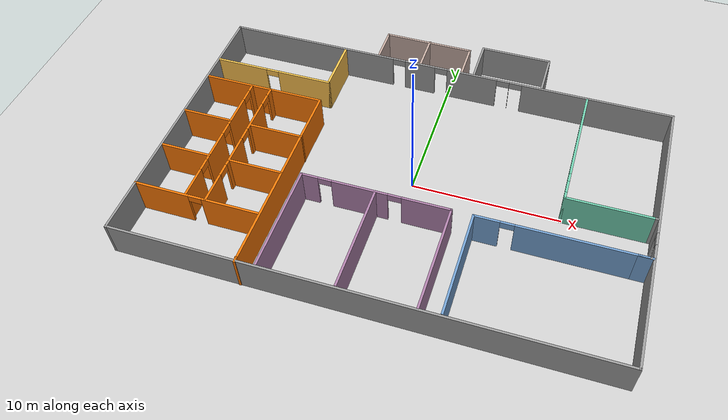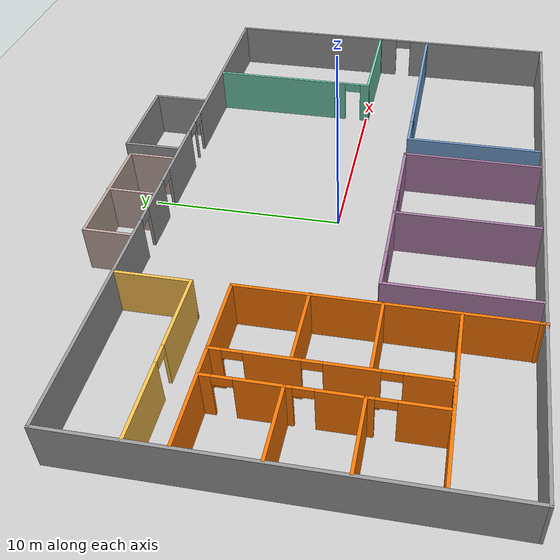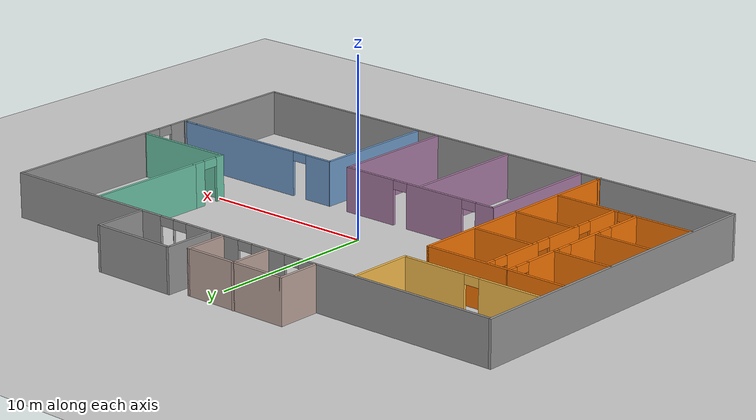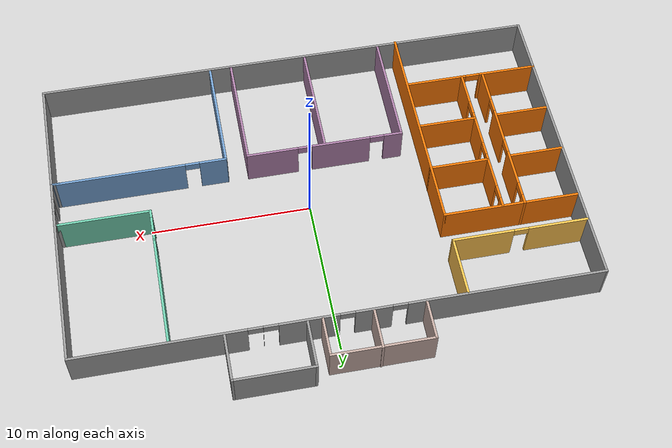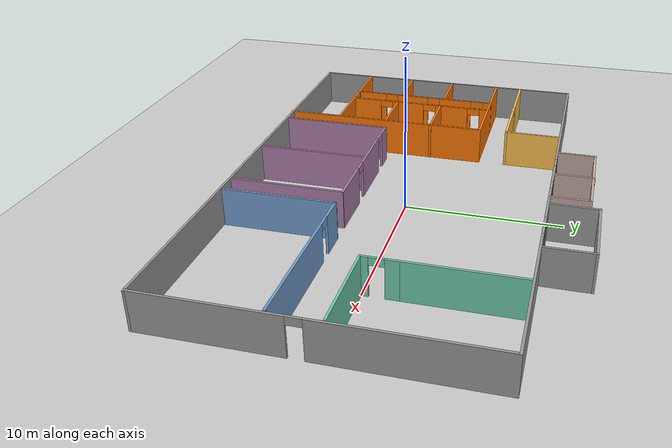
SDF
<sdf version="1.6">
 <world name="default">
  <model name="ground_plane">
   <static>1</static>
   <link name="link">
    <collision name="collision">
     <geometry><plane><normal>0 0 1</normal><size>100 100</size></plane></geometry>
     <surface>
      <contact><collide_bitmask>65535</collide_bitmask></contact>
      <friction><ode><mu>100</mu><mu2>50</mu2></ode></friction>
     </surface>
    </collision>
    <visual name="visual">
     <cast_shadows>0</cast_shadows>
     <geometry><plane><normal>0 0 1</normal><size>100 100</size></plane></geometry>
     <material>
      <script><uri>file://media/materials/scripts/gazebo.material</uri><name>Gazebo/Grey</name></script>
     </material>
    </visual>
   </link>
  </model>
  <model name="myBuilding">
   <pose>-0.25188 0.80761 0 0 -0 0</pose>
   <link name="Wall_105">
    <collision name="Wall_105_Collision">
     <geometry><box><size>2.5 0.15 2.5</size></box></geometry>
     <pose>0 0 1.25 0 -0 0</pose>
    </collision>
    <visual name="Wall_105_Visual">
     <pose>0 0 1.25 0 -0 0</pose>
     <geometry><box><size>2.5 0.15 2.5</size></box></geometry>
     <material>
      <script><uri>file://media/materials/scripts/gazebo.material</uri><name>Gazebo/Grey</name></script>
      <ambient>0.760784 0.662745 0.627451 1</ambient>
     </material>
     <meta><layer>0</layer></meta>
    </visual>
    <pose>-5.01832 9.47119 0 0 -0 1.5708</pose>
   </link>
   <link name="Wall_106">
    <collision name="Wall_106_Collision">
     <geometry><box><size>6.3289 0.15 2.5</size></box></geometry>
     <pose>0 0 1.25 0 -0 0</pose>
    </collision>
    <visual name="Wall_106_Visual">
     <pose>0 0 1.25 0 -0 0</pose>
     <geometry><box><size>6.3289 0.15 2.5</size></box></geometry>
     <material>
      <script><uri>file://media/materials/scripts/gazebo.material</uri><name>Gazebo/Grey</name></script>
      <ambient>0.760784 0.662745 0.627451 1</ambient>
     </material>
     <meta><layer>0</layer></meta>
    </visual>
    <pose>-1.92887 10.6462 0 0 -0 0</pose>
   </link>
   <link name="Wall_112">
    <collision name="Wall_112_Collision">
     <geometry><box><size>2.5 0.15 2.5</size></box></geometry>
     <pose>0 0 1.25 0 -0 0</pose>
    </collision>
    <visual name="Wall_112_Visual">
     <pose>0 0 1.25 0 -0 0</pose>
     <geometry><box><size>2.5 0.15 2.5</size></box></geometry>
     <material>
      <script><uri>file://media/materials/scripts/gazebo.material</uri><name>Gazebo/Grey</name></script>
      <ambient>0.760784 0.662745 0.627451 1</ambient>
     </material>
     <meta><layer>0</layer></meta>
    </visual>
    <pose>1.16058 9.47119 0 0 -0 -1.5708</pose>
   </link>
   <link name="Wall_119">
    <collision name="Wall_119_Collision">
     <geometry><box><size>2.5 0.15 2.5</size></box></geometry>
     <pose>0 0 1.25 0 -0 0</pose>
    </collision>
    <visual name="Wall_119_Visual">
     <pose>0 0 1.25 0 -0 0</pose>
     <geometry><box><size>2.5 0.15 2.5</size></box></geometry>
     <material>
      <script><uri>file://media/materials/scripts/gazebo.material</uri><name>Gazebo/Grey</name></script>
      <ambient>0.760784 0.662745 0.627451 1</ambient>
     </material>
     <meta><layer>0</layer></meta>
    </visual>
    <pose>-1.87489 9.50785 0 0 -0 -1.5708</pose>
   </link>
   <link name="Wall_121">
    <collision name="Wall_121_Collision">
     <geometry><box><size>8.5 0.15 2.5</size></box></geometry>
     <pose>0 0 1.25 0 -0 0</pose>
    </collision>
    <visual name="Wall_121_Visual">
     <pose>0 0 1.25 0 -0 0</pose>
     <geometry><box><size>8.5 0.15 2.5</size></box></geometry>
     <material>
      <script><uri>file://media/materials/scripts/gazebo.material</uri><name>Gazebo/Grey</name></script>
      <ambient>0.996078 0.47451 0.0196078 1</ambient>
     </material>
     <meta><layer>0</layer></meta>
    </visual>
    <pose>-11.6187 2.66208 0 0 -0 0</pose>
   </link>
   <link name="Wall_122">
    <collision name="Wall_122_Collision">
     <geometry><box><size>14 0.15 2.5</size></box></geometry>
     <pose>0 0 1.25 0 -0 0</pose>
    </collision>
    <visual name="Wall_122_Visual">
     <pose>0 0 1.25 0 -0 0</pose>
     <geometry><box><size>14 0.15 2.5</size></box></geometry>
     <material>
      <script><uri>file://media/materials/scripts/gazebo.material</uri><name>Gazebo/Grey</name></script>
      <ambient>0.996078 0.47451 0.0196078 1</ambient>
     </material>
     <meta><layer>0</layer></meta>
    </visual>
    <pose>-7.4437 -4.26292 0 0 -0 -1.5708</pose>
   </link>
   <link name="Wall_128">
    <pose>-11.7413 -7.56548 0 0 -0 0</pose>
    <visual name="Wall_128_Visual_0">
     <pose>-2.38371 0 1.25 0 -0 0</pose>
     <geometry><box><size>3.73259 0.15 2.5</size></box></geometry>
     <material>
      <script><uri>file://media/materials/scripts/gazebo.material</uri><name>Gazebo/Grey</name></script>
      <ambient>0.996078 0.47451 0.0196078 1</ambient>
     </material>
     <meta><layer>0</layer></meta>
    </visual>
    <collision name="Wall_128_Collision_0">
     <geometry><box><size>3.73259 0.15 2.5</size></box></geometry>
     <pose>-2.38371 0 1.25 0 -0 0</pose>
    </collision>
    <visual name="Wall_128_Visual_1">
     <pose>2.31629 0 1.25 0 -0 0</pose>
     <geometry><box><size>3.86741 0.15 2.5</size></box></geometry>
     <material>
      <script><uri>file://media/materials/scripts/gazebo.material</uri><name>Gazebo/Grey</name></script>
      <ambient>0.996078 0.47451 0.0196078 1</ambient>
     </material>
     <meta><layer>0</layer></meta>
    </visual>
    <collision name="Wall_128_Collision_1">
     <geometry><box><size>3.86741 0.15 2.5</size></box></geometry>
     <pose>2.31629 0 1.25 0 -0 0</pose>
    </collision>
    <visual name="Wall_128_Visual_2">
     <pose>-0.067411 0 2.25 0 -0 0</pose>
     <geometry><box><size>0.9 0.15 0.5</size></box></geometry>
     <material>
      <script><uri>file://media/materials/scripts/gazebo.material</uri><name>Gazebo/Grey</name></script>
      <ambient>0.996078 0.47451 0.0196078 1</ambient>
     </material>
     <meta><layer>0</layer></meta>
    </visual>
    <collision name="Wall_128_Collision_2">
     <geometry><box><size>0.9 0.15 0.5</size></box></geometry>
     <pose>-0.067411 0 2.25 0 -0 0</pose>
    </collision>
   </link>
   <link name="Wall_130">
    <pose>-12.4818 -2.38792 0 0 -0 -1.5708</pose>
    <visual name="Wall_130_Visual_0">
     <pose>-4.80532 0 1.25 0 -0 0</pose>
     <geometry><box><size>0.639365 0.15 2.5</size></box></geometry>
     <material>
      <script><uri>file://media/materials/scripts/gazebo.material</uri><name>Gazebo/Grey</name></script>
      <ambient>0.996078 0.47451 0.0196078 1</ambient>
     </material>
     <meta><layer>0</layer></meta>
    </visual>
    <collision name="Wall_130_Collision_0">
     <geometry><box><size>0.639365 0.15 2.5</size></box></geometry>
     <pose>-4.80532 0 1.25 0 -0 0</pose>
    </collision>
    <visual name="Wall_130_Visual_1">
     <pose>-2.38004 0 1.25 0 -0 0</pose>
     <geometry><box><size>2.4112 0.15 2.5</size></box></geometry>
     <material>
      <script><uri>file://media/materials/scripts/gazebo.material</uri><name>Gazebo/Grey</name></script>
      <ambient>0.996078 0.47451 0.0196078 1</ambient>
     </material>
     <meta><layer>0</layer></meta>
    </visual>
    <collision name="Wall_130_Collision_1">
     <geometry><box><size>2.4112 0.15 2.5</size></box></geometry>
     <pose>-2.38004 0 1.25 0 -0 0</pose>
    </collision>
    <visual name="Wall_130_Visual_2">
     <pose>0.916245 0 1.25 0 -0 0</pose>
     <geometry><box><size>2.38137 0.15 2.5</size></box></geometry>
     <material>
      <script><uri>file://media/materials/scripts/gazebo.material</uri><name>Gazebo/Grey</name></script>
      <ambient>0.996078 0.47451 0.0196078 1</ambient>
     </material>
     <meta><layer>0</layer></meta>
    </visual>
    <collision name="Wall_130_Collision_2">
     <geometry><box><size>2.38137 0.15 2.5</size></box></geometry>
     <pose>0.916245 0 1.25 0 -0 0</pose>
    </collision>
    <visual name="Wall_130_Visual_3">
     <pose>4.06596 0 1.25 0 -0 0</pose>
     <geometry><box><size>2.11807 0.15 2.5</size></box></geometry>
     <material>
      <script><uri>file://media/materials/scripts/gazebo.material</uri><name>Gazebo/Grey</name></script>
      <ambient>0.996078 0.47451 0.0196078 1</ambient>
     </material>
     <meta><layer>0</layer></meta>
    </visual>
    <collision name="Wall_130_Collision_3">
     <geometry><box><size>2.11807 0.15 2.5</size></box></geometry>
     <pose>4.06596 0 1.25 0 -0 0</pose>
    </collision>
    <visual name="Wall_130_Visual_4">
     <pose>-4.03564 0 2.25 0 -0 0</pose>
     <geometry><box><size>0.9 0.15 0.5</size></box></geometry>
     <material>
      <script><uri>file://media/materials/scripts/gazebo.material</uri><name>Gazebo/Grey</name></script>
      <ambient>0.996078 0.47451 0.0196078 1</ambient>
     </material>
     <meta><layer>0</layer></meta>
    </visual>
    <collision name="Wall_130_Collision_4">
     <geometry><box><size>0.9 0.15 0.5</size></box></geometry>
     <pose>-4.03564 0 2.25 0 -0 0</pose>
    </collision>
    <visual name="Wall_130_Visual_5">
     <pose>-0.724438 0 2.25 0 -0 0</pose>
     <geometry><box><size>0.9 0.15 0.5</size></box></geometry>
     <material>
      <script><uri>file://media/materials/scripts/gazebo.material</uri><name>Gazebo/Grey</name></script>
      <ambient>0.996078 0.47451 0.0196078 1</ambient>
     </material>
     <meta><layer>0</layer></meta>
    </visual>
    <collision name="Wall_130_Collision_5">
     <geometry><box><size>0.9 0.15 0.5</size></box></geometry>
     <pose>-0.724438 0 2.25 0 -0 0</pose>
    </collision>
    <visual name="Wall_130_Visual_6">
     <pose>2.55693 0 2.25 0 -0 0</pose>
     <geometry><box><size>0.9 0.15 0.5</size></box></geometry>
     <material>
      <script><uri>file://media/materials/scripts/gazebo.material</uri><name>Gazebo/Grey</name></script>
      <ambient>0.996078 0.47451 0.0196078 1</ambient>
     </material>
     <meta><layer>0</layer></meta>
    </visual>
    <collision name="Wall_130_Collision_6">
     <geometry><box><size>0.9 0.15 0.5</size></box></geometry>
     <pose>2.55693 0 2.25 0 -0 0</pose>
    </collision>
   </link>
   <link name="Wall_132">
    <pose>-11.1003 -2.44871 0 0 -0 -1.5708</pose>
    <visual name="Wall_132_Visual_0">
     <pose>-4.8208 0 1.25 0 -0 0</pose>
     <geometry><box><size>0.60841 0.15 2.5</size></box></geometry>
     <material>
      <script><uri>file://media/materials/scripts/gazebo.material</uri><name>Gazebo/Grey</name></script>
      <ambient>0.996078 0.47451 0.0196078 1</ambient>
     </material>
     <meta><layer>0</layer></meta>
    </visual>
    <collision name="Wall_132_Collision_0">
     <geometry><box><size>0.60841 0.15 2.5</size></box></geometry>
     <pose>-4.8208 0 1.25 0 -0 0</pose>
    </collision>
    <visual name="Wall_132_Visual_1">
     <pose>-2.39608 0 1.25 0 -0 0</pose>
     <geometry><box><size>2.44103 0.15 2.5</size></box></geometry>
     <material>
      <script><uri>file://media/materials/scripts/gazebo.material</uri><name>Gazebo/Grey</name></script>
      <ambient>0.996078 0.47451 0.0196078 1</ambient>
     </material>
     <meta><layer>0</layer></meta>
    </visual>
    <collision name="Wall_132_Collision_1">
     <geometry><box><size>2.44103 0.15 2.5</size></box></geometry>
     <pose>-2.39608 0 1.25 0 -0 0</pose>
    </collision>
    <visual name="Wall_132_Visual_2">
     <pose>0.915121 0 1.25 0 -0 0</pose>
     <geometry><box><size>2.38137 0.15 2.5</size></box></geometry>
     <material>
      <script><uri>file://media/materials/scripts/gazebo.material</uri><name>Gazebo/Grey</name></script>
      <ambient>0.996078 0.47451 0.0196078 1</ambient>
     </material>
     <meta><layer>0</layer></meta>
    </visual>
    <collision name="Wall_132_Collision_2">
     <geometry><box><size>2.38137 0.15 2.5</size></box></geometry>
     <pose>0.915121 0 1.25 0 -0 0</pose>
    </collision>
    <visual name="Wall_132_Visual_3">
     <pose>4.0654 0 1.25 0 -0 0</pose>
     <geometry><box><size>2.1192 0.15 2.5</size></box></geometry>
     <material>
      <script><uri>file://media/materials/scripts/gazebo.material</uri><name>Gazebo/Grey</name></script>
      <ambient>0.996078 0.47451 0.0196078 1</ambient>
     </material>
     <meta><layer>0</layer></meta>
    </visual>
    <collision name="Wall_132_Collision_3">
     <geometry><box><size>2.1192 0.15 2.5</size></box></geometry>
     <pose>4.0654 0 1.25 0 -0 0</pose>
    </collision>
    <visual name="Wall_132_Visual_4">
     <pose>-4.06659 0 2.25 0 -0 0</pose>
     <geometry><box><size>0.9 0.15 0.5</size></box></geometry>
     <material>
      <script><uri>file://media/materials/scripts/gazebo.material</uri><name>Gazebo/Grey</name></script>
      <ambient>0.996078 0.47451 0.0196078 1</ambient>
     </material>
     <meta><layer>0</layer></meta>
    </visual>
    <collision name="Wall_132_Collision_4">
     <geometry><box><size>0.9 0.15 0.5</size></box></geometry>
     <pose>-4.06659 0 2.25 0 -0 0</pose>
    </collision>
    <visual name="Wall_132_Visual_5">
     <pose>-0.725562 0 2.25 0 -0 0</pose>
     <geometry><box><size>0.9 0.15 0.5</size></box></geometry>
     <material>
      <script><uri>file://media/materials/scripts/gazebo.material</uri><name>Gazebo/Grey</name></script>
      <ambient>0.996078 0.47451 0.0196078 1</ambient>
     </material>
     <meta><layer>0</layer></meta>
    </visual>
    <collision name="Wall_132_Collision_5">
     <geometry><box><size>0.9 0.15 0.5</size></box></geometry>
     <pose>-0.725562 0 2.25 0 -0 0</pose>
    </collision>
    <visual name="Wall_132_Visual_6">
     <pose>2.5558 0 2.25 0 -0 0</pose>
     <geometry><box><size>0.9 0.15 0.5</size></box></geometry>
     <material>
      <script><uri>file://media/materials/scripts/gazebo.material</uri><name>Gazebo/Grey</name></script>
      <ambient>0.996078 0.47451 0.0196078 1</ambient>
     </material>
     <meta><layer>0</layer></meta>
    </visual>
    <collision name="Wall_132_Collision_6">
     <geometry><box><size>0.9 0.15 0.5</size></box></geometry>
     <pose>2.5558 0 2.25 0 -0 0</pose>
    </collision>
   </link>
   <link name="Wall_134">
    <collision name="Wall_134_Collision">
     <geometry><box><size>3.5 0.15 2.5</size></box></geometry>
     <pose>0 0 1.25 0 -0 0</pose>
    </collision>
    <visual name="Wall_134_Visual">
     <pose>0 0 1.25 0 -0 0</pose>
     <geometry><box><size>3.5 0.15 2.5</size></box></geometry>
     <material>
      <script><uri>file://media/materials/scripts/gazebo.material</uri><name>Gazebo/Grey</name></script>
      <ambient>0.996078 0.47451 0.0196078 1</ambient>
     </material>
     <meta><layer>0</layer></meta>
    </visual>
    <pose>-14.1641 -0.876675 0 0 -0 0</pose>
   </link>
   <link name="Wall_136">
    <collision name="Wall_136_Collision">
     <geometry><box><size>3.5 0.15 2.5</size></box></geometry>
     <pose>0 0 1.25 0 -0 0</pose>
    </collision>
    <visual name="Wall_136_Visual">
     <pose>0 0 1.25 0 -0 0</pose>
     <geometry><box><size>3.5 0.15 2.5</size></box></geometry>
     <material>
      <script><uri>file://media/materials/scripts/gazebo.material</uri><name>Gazebo/Grey</name></script>
      <ambient>0.996078 0.47451 0.0196078 1</ambient>
     </material>
     <meta><layer>0</layer></meta>
    </visual>
    <pose>-14.1641 -4.14321 0 0 -0 0</pose>
   </link>
   <link name="Wall_141">
    <collision name="Wall_141_Collision">
     <geometry><box><size>3.75 0.15 2.5</size></box></geometry>
     <pose>0 0 1.25 0 -0 0</pose>
    </collision>
    <visual name="Wall_141_Visual">
     <pose>0 0 1.25 0 -0 0</pose>
     <geometry><box><size>3.75 0.15 2.5</size></box></geometry>
     <material>
      <script><uri>file://media/materials/scripts/gazebo.material</uri><name>Gazebo/Grey</name></script>
      <ambient>0.996078 0.47451 0.0196078 1</ambient>
     </material>
     <meta><layer>0</layer></meta>
    </visual>
    <pose>-9.22611 -0.867546 0 0 -0 0</pose>
   </link>
   <link name="Wall_143">
    <collision name="Wall_143_Collision">
     <geometry><box><size>3.75 0.15 2.5</size></box></geometry>
     <pose>0 0 1.25 0 -0 0</pose>
    </collision>
    <visual name="Wall_143_Visual">
     <pose>0 0 1.25 0 -0 0</pose>
     <geometry><box><size>3.75 0.15 2.5</size></box></geometry>
     <material>
      <script><uri>file://media/materials/scripts/gazebo.material</uri><name>Gazebo/Grey</name></script>
      <ambient>0.996078 0.47451 0.0196078 1</ambient>
     </material>
     <meta><layer>0</layer></meta>
    </visual>
    <pose>-9.29018 -4.14114 0 0 -0 0</pose>
   </link>
   <link name="Wall_145">
    <pose>-11.6907 4.51145 0 0 -0 0</pose>
    <visual name="Wall_145_Visual_0">
     <pose>-2.37919 0 1.25 0 -0 0</pose>
     <geometry><box><size>3.74162 0.15 2.5</size></box></geometry>
     <material>
      <script><uri>file://media/materials/scripts/gazebo.material</uri><name>Gazebo/Grey</name></script>
      <ambient>1 0.764706 0.305882 1</ambient>
     </material>
     <meta><layer>0</layer></meta>
    </visual>
    <collision name="Wall_145_Collision_0">
     <geometry><box><size>3.74162 0.15 2.5</size></box></geometry>
     <pose>-2.37919 0 1.25 0 -0 0</pose>
    </collision>
    <visual name="Wall_145_Visual_1">
     <pose>2.32081 0 1.25 0 -0 0</pose>
     <geometry><box><size>3.85838 0.15 2.5</size></box></geometry>
     <material>
      <script><uri>file://media/materials/scripts/gazebo.material</uri><name>Gazebo/Grey</name></script>
      <ambient>1 0.764706 0.305882 1</ambient>
     </material>
     <meta><layer>0</layer></meta>
    </visual>
    <collision name="Wall_145_Collision_1">
     <geometry><box><size>3.85838 0.15 2.5</size></box></geometry>
     <pose>2.32081 0 1.25 0 -0 0</pose>
    </collision>
    <visual name="Wall_145_Visual_2">
     <pose>-0.058376 0 2.25 0 -0 0</pose>
     <geometry><box><size>0.9 0.15 0.5</size></box></geometry>
     <material>
      <script><uri>file://media/materials/scripts/gazebo.material</uri><name>Gazebo/Grey</name></script>
      <ambient>1 0.764706 0.305882 1</ambient>
     </material>
     <meta><layer>0</layer></meta>
    </visual>
    <collision name="Wall_145_Collision_2">
     <geometry><box><size>0.9 0.15 0.5</size></box></geometry>
     <pose>-0.058376 0 2.25 0 -0 0</pose>
    </collision>
   </link>
   <link name="Wall_146">
    <collision name="Wall_146_Collision">
     <geometry><box><size>3.75 0.15 2.5</size></box></geometry>
     <pose>0 0 1.25 0 -0 0</pose>
    </collision>
    <visual name="Wall_146_Visual">
     <pose>0 0 1.25 0 -0 0</pose>
     <geometry><box><size>3.75 0.15 2.5</size></box></geometry>
     <material>
      <script><uri>file://media/materials/scripts/gazebo.material</uri><name>Gazebo/Grey</name></script>
      <ambient>1 0.764706 0.305882 1</ambient>
     </material>
     <meta><layer>0</layer></meta>
    </visual>
    <pose>-7.51571 6.31145 0 0 -0 1.5708</pose>
   </link>
   <link name="Wall_149">
    <collision name="Wall_149_Collision">
     <geometry><box><size>7.29417 0.15 2.5</size></box></geometry>
     <pose>0 0 1.25 0 -0 0</pose>
    </collision>
    <visual name="Wall_149_Visual">
     <pose>0 0 1.25 0 -0 0</pose>
     <geometry><box><size>7.29417 0.15 2.5</size></box></geometry>
     <material>
      <script><uri>file://media/materials/scripts/gazebo.material</uri><name>Gazebo/Grey</name></script>
      <ambient>0.678431 0.498039 0.658824 1</ambient>
     </material>
     <meta><layer>0</layer></meta>
    </visual>
    <pose>-6.20221 -7.45674 0 0 -0 1.5708</pose>
   </link>
   <link name="Wall_150">
    <pose>-1.27721 -3.85035 0 0 -0 0</pose>
    <visual name="Wall_150_Visual_0">
     <pose>-4.40031 0 1.25 0 -0 0</pose>
     <geometry><box><size>1.19937 0.15 2.5</size></box></geometry>
     <material>
      <script><uri>file://media/materials/scripts/gazebo.material</uri><name>Gazebo/Grey</name></script>
      <ambient>0.678431 0.498039 0.658824 1</ambient>
     </material>
     <meta><layer>0</layer></meta>
    </visual>
    <collision name="Wall_150_Collision_0">
     <geometry><box><size>1.19937 0.15 2.5</size></box></geometry>
     <pose>-4.40031 0 1.25 0 -0 0</pose>
    </collision>
    <visual name="Wall_150_Visual_1">
     <pose>-1.03503 0 1.25 0 -0 0</pose>
     <geometry><box><size>3.7312 0.15 2.5</size></box></geometry>
     <material>
      <script><uri>file://media/materials/scripts/gazebo.material</uri><name>Gazebo/Grey</name></script>
      <ambient>0.678431 0.498039 0.658824 1</ambient>
     </material>
     <meta><layer>0</layer></meta>
    </visual>
    <collision name="Wall_150_Collision_1">
     <geometry><box><size>3.7312 0.15 2.5</size></box></geometry>
     <pose>-1.03503 0 1.25 0 -0 0</pose>
    </collision>
    <visual name="Wall_150_Visual_2">
     <pose>3.36529 0 1.25 0 -0 0</pose>
     <geometry><box><size>3.26943 0.15 2.5</size></box></geometry>
     <material>
      <script><uri>file://media/materials/scripts/gazebo.material</uri><name>Gazebo/Grey</name></script>
      <ambient>0.678431 0.498039 0.658824 1</ambient>
     </material>
     <meta><layer>0</layer></meta>
    </visual>
    <collision name="Wall_150_Collision_2">
     <geometry><box><size>3.26943 0.15 2.5</size></box></geometry>
     <pose>3.36529 0 1.25 0 -0 0</pose>
    </collision>
    <visual name="Wall_150_Visual_3">
     <pose>-3.35063 0 2.25 0 -0 0</pose>
     <geometry><box><size>0.9 0.15 0.5</size></box></geometry>
     <material>
      <script><uri>file://media/materials/scripts/gazebo.material</uri><name>Gazebo/Grey</name></script>
      <ambient>0.678431 0.498039 0.658824 1</ambient>
     </material>
     <meta><layer>0</layer></meta>
    </visual>
    <collision name="Wall_150_Collision_3">
     <geometry><box><size>0.9 0.15 0.5</size></box></geometry>
     <pose>-3.35063 0 2.25 0 -0 0</pose>
    </collision>
    <visual name="Wall_150_Visual_4">
     <pose>1.28057 0 2.25 0 -0 0</pose>
     <geometry><box><size>0.9 0.15 0.5</size></box></geometry>
     <material>
      <script><uri>file://media/materials/scripts/gazebo.material</uri><name>Gazebo/Grey</name></script>
      <ambient>0.678431 0.498039 0.658824 1</ambient>
     </material>
     <meta><layer>0</layer></meta>
    </visual>
    <collision name="Wall_150_Collision_4">
     <geometry><box><size>0.9 0.15 0.5</size></box></geometry>
     <pose>1.28057 0 2.25 0 -0 0</pose>
    </collision>
   </link>
   <link name="Wall_151">
    <collision name="Wall_151_Collision">
     <geometry><box><size>7.29417 0.15 2.5</size></box></geometry>
     <pose>0 0 1.25 0 -0 0</pose>
    </collision>
    <visual name="Wall_151_Visual">
     <pose>0 0 1.25 0 -0 0</pose>
     <geometry><box><size>7.29417 0.15 2.5</size></box></geometry>
     <material>
      <script><uri>file://media/materials/scripts/gazebo.material</uri><name>Gazebo/Grey</name></script>
      <ambient>0.678431 0.498039 0.658824 1</ambient>
     </material>
     <meta><layer>0</layer></meta>
    </visual>
    <pose>3.64779 -7.45674 0 0 -0 -1.5708</pose>
   </link>
   <link name="Wall_153">
    <collision name="Wall_153_Collision">
     <geometry><box><size>7.25 0.15 2.5</size></box></geometry>
     <pose>0 0 1.25 0 -0 0</pose>
    </collision>
    <visual name="Wall_153_Visual">
     <pose>0 0 1.25 0 -0 0</pose>
     <geometry><box><size>7.25 0.15 2.5</size></box></geometry>
     <material>
      <script><uri>file://media/materials/scripts/gazebo.material</uri><name>Gazebo/Grey</name></script>
      <ambient>0.678431 0.498039 0.658824 1</ambient>
     </material>
     <meta><layer>0</layer></meta>
    </visual>
    <pose>-1.26593 -7.43583 0 0 -0 -1.5708</pose>
   </link>
   <link name="Wall_155">
    <collision name="Wall_155_Collision">
     <geometry><box><size>3 0.15 2.5</size></box></geometry>
     <pose>0 0 1.25 0 -0 0</pose>
    </collision>
    <visual name="Wall_155_Visual">
     <pose>0 0 1.25 0 -0 0</pose>
     <geometry><box><size>3 0.15 2.5</size></box></geometry>
     <material>
      <script><uri>file://media/materials/scripts/gazebo.material</uri><name>Gazebo/Grey</name></script>
      <ambient>0.180392 0.203922 0.211765 1</ambient>
     </material>
     <meta><layer>0</layer></meta>
    </visual>
    <pose>2.05464 9.76292 0 0 -0 1.5708</pose>
   </link>
   <link name="Wall_156">
    <collision name="Wall_156_Collision">
     <geometry><box><size>5 0.15 2.5</size></box></geometry>
     <pose>0 0 1.25 0 -0 0</pose>
    </collision>
    <visual name="Wall_156_Visual">
     <pose>0 0 1.25 0 -0 0</pose>
     <geometry><box><size>5 0.15 2.5</size></box></geometry>
     <material>
      <script><uri>file://media/materials/scripts/gazebo.material</uri><name>Gazebo/Grey</name></script>
      <ambient>0.180392 0.203922 0.211765 1</ambient>
     </material>
     <meta><layer>0</layer></meta>
    </visual>
    <pose>4.47964 11.1879 0 0 -0 0</pose>
   </link>
   <link name="Wall_157">
    <collision name="Wall_157_Collision">
     <geometry><box><size>3 0.15 2.5</size></box></geometry>
     <pose>0 0 1.25 0 -0 0</pose>
    </collision>
    <visual name="Wall_157_Visual">
     <pose>0 0 1.25 0 -0 0</pose>
     <geometry><box><size>3 0.15 2.5</size></box></geometry>
     <material>
      <script><uri>file://media/materials/scripts/gazebo.material</uri><name>Gazebo/Grey</name></script>
      <ambient>0.180392 0.203922 0.211765 1</ambient>
     </material>
     <meta><layer>0</layer></meta>
    </visual>
    <pose>6.90463 9.76292 0 0 -0 -1.5708</pose>
   </link>
   <link name="Wall_22">
    <collision name="Wall_22_Collision">
     <geometry><box><size>19.5 0.15 2.5</size></box></geometry>
     <pose>0 0 1.25 0 -0 0</pose>
    </collision>
    <visual name="Wall_22_Visual">
     <pose>0 0 1.25 0 -0 0</pose>
     <geometry><box><size>19.5 0.15 2.5</size></box></geometry>
     <material>
      <script><uri>file://media/materials/scripts/gazebo.material</uri><name>Gazebo/Grey</name></script>
      <ambient>1 1 1 1</ambient>
     </material>
     <meta><layer>0</layer></meta>
    </visual>
    <pose>-15.925 -1.47174 0 0 -0 1.5708</pose>
   </link>
   <link name="Wall_24">
    <pose>-0 8.20326 0 0 -0 0</pose>
    <visual name="Wall_24_Visual_0">
     <pose>-9.95172 0 1.25 0 -0 0</pose>
     <geometry><box><size>12.0966 0.15 2.5</size></box></geometry>
     <material>
      <script><uri>file://media/materials/scripts/gazebo.material</uri><name>Gazebo/Grey</name></script>
      <ambient>1 1 1 1</ambient>
     </material>
     <meta><layer>0</layer></meta>
    </visual>
    <collision name="Wall_24_Collision_0">
     <geometry><box><size>12.0966 0.15 2.5</size></box></geometry>
     <pose>-9.95172 0 1.25 0 -0 0</pose>
    </collision>
    <visual name="Wall_24_Visual_1">
     <pose>-1.88822 0 1.25 0 -0 0</pose>
     <geometry><box><size>2.23043 0.15 2.5</size></box></geometry>
     <material>
      <script><uri>file://media/materials/scripts/gazebo.material</uri><name>Gazebo/Grey</name></script>
      <ambient>1 1 1 1</ambient>
     </material>
     <meta><layer>0</layer></meta>
    </visual>
    <collision name="Wall_24_Collision_1">
     <geometry><box><size>2.23043 0.15 2.5</size></box></geometry>
     <pose>-1.88822 0 1.25 0 -0 0</pose>
    </collision>
    <visual name="Wall_24_Visual_2">
     <pose>1.93081 0 1.25 0 -0 0</pose>
     <geometry><box><size>3.60763 0.15 2.5</size></box></geometry>
     <material>
      <script><uri>file://media/materials/scripts/gazebo.material</uri><name>Gazebo/Grey</name></script>
      <ambient>1 1 1 1</ambient>
     </material>
     <meta><layer>0</layer></meta>
    </visual>
    <collision name="Wall_24_Collision_2">
     <geometry><box><size>3.60763 0.15 2.5</size></box></geometry>
     <pose>1.93081 0 1.25 0 -0 0</pose>
    </collision>
    <visual name="Wall_24_Visual_3">
     <pose>4.63831 0 1.25 0 -0 0</pose>
     <geometry><box><size>0.007372 0.15 2.5</size></box></geometry>
     <material>
      <script><uri>file://media/materials/scripts/gazebo.material</uri><name>Gazebo/Grey</name></script>
      <ambient>1 1 1 1</ambient>
     </material>
     <meta><layer>0</layer></meta>
    </visual>
    <collision name="Wall_24_Collision_3">
     <geometry><box><size>0.007372 0.15 2.5</size></box></geometry>
     <pose>4.63831 0 1.25 0 -0 0</pose>
    </collision>
    <visual name="Wall_24_Visual_4">
     <pose>10.771 0 1.25 0 -0 0</pose>
     <geometry><box><size>10.458 0.15 2.5</size></box></geometry>
     <material>
      <script><uri>file://media/materials/scripts/gazebo.material</uri><name>Gazebo/Grey</name></script>
      <ambient>1 1 1 1</ambient>
     </material>
     <meta><layer>0</layer></meta>
    </visual>
    <collision name="Wall_24_Collision_4">
     <geometry><box><size>10.458 0.15 2.5</size></box></geometry>
     <pose>10.771 0 1.25 0 -0 0</pose>
    </collision>
    <visual name="Wall_24_Visual_5">
     <pose>-3.45344 0 2.25 0 -0 0</pose>
     <geometry><box><size>0.9 0.15 0.5</size></box></geometry>
     <material>
      <script><uri>file://media/materials/scripts/gazebo.material</uri><name>Gazebo/Grey</name></script>
      <ambient>1 1 1 1</ambient>
     </material>
     <meta><layer>0</layer></meta>
    </visual>
    <collision name="Wall_24_Collision_5">
     <geometry><box><size>0.9 0.15 0.5</size></box></geometry>
     <pose>-3.45344 0 2.25 0 -0 0</pose>
    </collision>
    <visual name="Wall_24_Visual_6">
     <pose>-0.323003 0 2.25 0 -0 0</pose>
     <geometry><box><size>0.9 0.15 0.5</size></box></geometry>
     <material>
      <script><uri>file://media/materials/scripts/gazebo.material</uri><name>Gazebo/Grey</name></script>
      <ambient>1 1 1 1</ambient>
     </material>
     <meta><layer>0</layer></meta>
    </visual>
    <collision name="Wall_24_Collision_6">
     <geometry><box><size>0.9 0.15 0.5</size></box></geometry>
     <pose>-0.323003 0 2.25 0 -0 0</pose>
    </collision>
    <visual name="Wall_24_Visual_7">
     <pose>4.18463 0 2.25 0 -0 0</pose>
     <geometry><box><size>0.9 0.15 0.5</size></box></geometry>
     <material>
      <script><uri>file://media/materials/scripts/gazebo.material</uri><name>Gazebo/Grey</name></script>
      <ambient>1 1 1 1</ambient>
     </material>
     <meta><layer>0</layer></meta>
    </visual>
    <collision name="Wall_24_Collision_7">
     <geometry><box><size>0.9 0.15 0.5</size></box></geometry>
     <pose>4.18463 0 2.25 0 -0 0</pose>
    </collision>
    <visual name="Wall_24_Visual_8">
     <pose>5.092 0 2.25 0 -0 0</pose>
     <geometry><box><size>0.9 0.15 0.5</size></box></geometry>
     <material>
      <script><uri>file://media/materials/scripts/gazebo.material</uri><name>Gazebo/Grey</name></script>
      <ambient>1 1 1 1</ambient>
     </material>
     <meta><layer>0</layer></meta>
    </visual>
    <collision name="Wall_24_Collision_8">
     <geometry><box><size>0.9 0.15 0.5</size></box></geometry>
     <pose>5.092 0 2.25 0 -0 0</pose>
    </collision>
   </link>
   <link name="Wall_25">
    <pose>15.925 -1.47174 0 0 -0 -1.5708</pose>
    <visual name="Wall_25_Visual_0">
     <pose>-4.66108 0 1.25 0 -0 0</pose>
     <geometry><box><size>10.1778 0.15 2.5</size></box></geometry>
     <material>
      <script><uri>file://media/materials/scripts/gazebo.material</uri><name>Gazebo/Grey</name></script>
      <ambient>1 1 1 1</ambient>
     </material>
     <meta><layer>0</layer></meta>
    </visual>
    <collision name="Wall_25_Collision_0">
     <geometry><box><size>10.1778 0.15 2.5</size></box></geometry>
     <pose>-4.66108 0 1.25 0 -0 0</pose>
    </collision>
    <visual name="Wall_25_Visual_1">
     <pose>5.53892 0 1.25 0 -0 0</pose>
     <geometry><box><size>8.42215 0.15 2.5</size></box></geometry>
     <material>
      <script><uri>file://media/materials/scripts/gazebo.material</uri><name>Gazebo/Grey</name></script>
      <ambient>1 1 1 1</ambient>
     </material>
     <meta><layer>0</layer></meta>
    </visual>
    <collision name="Wall_25_Collision_1">
     <geometry><box><size>8.42215 0.15 2.5</size></box></geometry>
     <pose>5.53892 0 1.25 0 -0 0</pose>
    </collision>
    <visual name="Wall_25_Visual_2">
     <pose>0.877846 0 2.25 0 -0 0</pose>
     <geometry><box><size>0.9 0.15 0.5</size></box></geometry>
     <material>
      <script><uri>file://media/materials/scripts/gazebo.material</uri><name>Gazebo/Grey</name></script>
      <ambient>1 1 1 1</ambient>
     </material>
     <meta><layer>0</layer></meta>
    </visual>
    <collision name="Wall_25_Collision_2">
     <geometry><box><size>0.9 0.15 0.5</size></box></geometry>
     <pose>0.877846 0 2.25 0 -0 0</pose>
    </collision>
   </link>
   <link name="Wall_26">
    <collision name="Wall_26_Collision">
     <geometry><box><size>32 0.15 2.5</size></box></geometry>
     <pose>0 0 1.25 0 -0 0</pose>
    </collision>
    <visual name="Wall_26_Visual">
     <pose>0 0 1.25 0 -0 0</pose>
     <geometry><box><size>32 0.15 2.5</size></box></geometry>
     <material>
      <script><uri>file://media/materials/scripts/gazebo.material</uri><name>Gazebo/Grey</name></script>
      <ambient>1 1 1 1</ambient>
     </material>
     <meta><layer>0</layer></meta>
    </visual>
    <pose>-0 -11.1467 0 0 -0 3.14159</pose>
   </link>
   <link name="Wall_44">
    <collision name="Wall_44_Collision">
     <geometry><box><size>7 0.15 2.5</size></box></geometry>
     <pose>0 0 1.25 0 -0 0</pose>
    </collision>
    <visual name="Wall_44_Visual">
     <pose>0 0 1.25 0 -0 0</pose>
     <geometry><box><size>7 0.15 2.5</size></box></geometry>
     <material>
      <script><uri>file://media/materials/scripts/gazebo.material</uri><name>Gazebo/Grey</name></script>
      <ambient>0.435294 0.796078 0.67451 1</ambient>
     </material>
     <meta><layer>0</layer></meta>
    </visual>
    <pose>10.126 4.65683 0 0 -0 -1.5708</pose>
   </link>
   <link name="Wall_55">
    <collision name="Wall_55_Collision">
     <geometry><box><size>0.15 0.15 2.5</size></box></geometry>
     <pose>0 0 1.25 0 -0 0</pose>
    </collision>
    <visual name="Wall_55_Visual">
     <pose>0 0 1.25 0 -0 0</pose>
     <geometry><box><size>0.15 0.15 2.5</size></box></geometry>
     <material>
      <script><uri>file://media/materials/scripts/gazebo.material</uri><name>Gazebo/Grey</name></script>
      <ambient>0.996078 0.47451 0.0196078 1</ambient>
     </material>
     <meta><layer>0</layer></meta>
    </visual>
    <pose>-7.47475 -10.9231 0 0 -0 0</pose>
   </link>
   <link name="Wall_70">
    <pose>10.126 0.18183 0 0 -0 -1.5708</pose>
    <visual name="Wall_70_Visual_0">
     <pose>-0.720365 0 1.25 0 -0 0</pose>
     <geometry><box><size>0.809269 0.15 2.5</size></box></geometry>
     <material>
      <script><uri>file://media/materials/scripts/gazebo.material</uri><name>Gazebo/Grey</name></script>
      <ambient>0.435294 0.796078 0.67451 1</ambient>
     </material>
     <meta><layer>0</layer></meta>
    </visual>
    <collision name="Wall_70_Collision_0">
     <geometry><box><size>0.809269 0.15 2.5</size></box></geometry>
     <pose>-0.720365 0 1.25 0 -0 0</pose>
    </collision>
    <visual name="Wall_70_Visual_1">
     <pose>0.854635 0 1.25 0 -0 0</pose>
     <geometry><box><size>0.540731 0.15 2.5</size></box></geometry>
     <material>
      <script><uri>file://media/materials/scripts/gazebo.material</uri><name>Gazebo/Grey</name></script>
      <ambient>0.435294 0.796078 0.67451 1</ambient>
     </material>
     <meta><layer>0</layer></meta>
    </visual>
    <collision name="Wall_70_Collision_1">
     <geometry><box><size>0.540731 0.15 2.5</size></box></geometry>
     <pose>0.854635 0 1.25 0 -0 0</pose>
    </collision>
    <visual name="Wall_70_Visual_2">
     <pose>0.134269 0 2.25 0 -0 0</pose>
     <geometry><box><size>0.9 0.15 0.5</size></box></geometry>
     <material>
      <script><uri>file://media/materials/scripts/gazebo.material</uri><name>Gazebo/Grey</name></script>
      <ambient>0.435294 0.796078 0.67451 1</ambient>
     </material>
     <meta><layer>0</layer></meta>
    </visual>
    <collision name="Wall_70_Collision_2">
     <geometry><box><size>0.9 0.15 0.5</size></box></geometry>
     <pose>0.134269 0 2.25 0 -0 0</pose>
    </collision>
   </link>
   <link name="Wall_71">
    <collision name="Wall_71_Collision">
     <geometry><box><size>5.75 0.15 2.5</size></box></geometry>
     <pose>0 0 1.25 0 -0 0</pose>
    </collision>
    <visual name="Wall_71_Visual">
     <pose>0 0 1.25 0 -0 0</pose>
     <geometry><box><size>5.75 0.15 2.5</size></box></geometry>
     <material>
      <script><uri>file://media/materials/scripts/gazebo.material</uri><name>Gazebo/Grey</name></script>
      <ambient>0.435294 0.796078 0.67451 1</ambient>
     </material>
     <meta><layer>0</layer></meta>
    </visual>
    <pose>12.926 -0.86817 0 0 -0 0</pose>
   </link>
   <link name="Wall_72">
    <collision name="Wall_72_Collision">
     <geometry><box><size>0.25 0.15 2.5</size></box></geometry>
     <pose>0 0 1.25 0 -0 0</pose>
    </collision>
    <visual name="Wall_72_Visual">
     <pose>0 0 1.25 0 -0 0</pose>
     <geometry><box><size>0.25 0.15 2.5</size></box></geometry>
     <material>
      <script><uri>file://media/materials/scripts/gazebo.material</uri><name>Gazebo/Grey</name></script>
      <ambient>1 1 1 1</ambient>
     </material>
     <meta><layer>0</layer></meta>
    </visual>
    <pose>15.776 -0.86817 0 0 -0 0</pose>
   </link>
   <link name="Wall_74">
    <collision name="Wall_74_Collision">
     <geometry><box><size>0.15 0.15 2.5</size></box></geometry>
     <pose>0 0 1.25 0 -0 0</pose>
    </collision>
    <visual name="Wall_74_Visual">
     <pose>0 0 1.25 0 -0 0</pose>
     <geometry><box><size>0.15 0.15 2.5</size></box></geometry>
     <material>
      <script><uri>file://media/materials/scripts/gazebo.material</uri><name>Gazebo/Grey</name></script>
      <ambient>1 1 1 1</ambient>
     </material>
     <meta><layer>0</layer></meta>
    </visual>
    <pose>15.726 -3.86817 0 0 -0 0</pose>
   </link>
   <link name="Wall_78">
    <pose>10.399 -3.86817 0 0 -0 3.14159</pose>
    <visual name="Wall_78_Visual_0">
     <pose>-1.30554 0 1.25 0 -0 0</pose>
     <geometry><box><size>8.19295 0.15 2.5</size></box></geometry>
     <material>
      <script><uri>file://media/materials/scripts/gazebo.material</uri><name>Gazebo/Grey</name></script>
      <ambient>0.447059 0.623529 0.811765 1</ambient>
     </material>
     <meta><layer>0</layer></meta>
    </visual>
    <collision name="Wall_78_Collision_0">
     <geometry><box><size>8.19295 0.15 2.5</size></box></geometry>
     <pose>-1.30554 0 1.25 0 -0 0</pose>
    </collision>
    <visual name="Wall_78_Visual_1">
     <pose>4.54648 0 1.25 0 -0 0</pose>
     <geometry><box><size>1.71108 0.15 2.5</size></box></geometry>
     <material>
      <script><uri>file://media/materials/scripts/gazebo.material</uri><name>Gazebo/Grey</name></script>
      <ambient>0.447059 0.623529 0.811765 1</ambient>
     </material>
     <meta><layer>0</layer></meta>
    </visual>
    <collision name="Wall_78_Collision_1">
     <geometry><box><size>1.71108 0.15 2.5</size></box></geometry>
     <pose>4.54648 0 1.25 0 -0 0</pose>
    </collision>
    <visual name="Wall_78_Visual_2">
     <pose>3.24094 0 2.25 0 -0 0</pose>
     <geometry><box><size>0.9 0.15 0.5</size></box></geometry>
     <material>
      <script><uri>file://media/materials/scripts/gazebo.material</uri><name>Gazebo/Grey</name></script>
      <ambient>0.447059 0.623529 0.811765 1</ambient>
     </material>
     <meta><layer>0</layer></meta>
    </visual>
    <collision name="Wall_78_Collision_2">
     <geometry><box><size>0.9 0.15 0.5</size></box></geometry>
     <pose>3.24094 0 2.25 0 -0 0</pose>
    </collision>
   </link>
   <link name="Wall_79">
    <collision name="Wall_79_Collision">
     <geometry><box><size>7.25 0.15 2.5</size></box></geometry>
     <pose>0 0 1.25 0 -0 0</pose>
    </collision>
    <visual name="Wall_79_Visual">
     <pose>0 0 1.25 0 -0 0</pose>
     <geometry><box><size>7.25 0.15 2.5</size></box></geometry>
     <material>
      <script><uri>file://media/materials/scripts/gazebo.material</uri><name>Gazebo/Grey</name></script>
      <ambient>0.447059 0.623529 0.811765 1</ambient>
     </material>
     <meta><layer>0</layer></meta>
    </visual>
    <pose>5.03764 -7.41817 0 0 -0 -1.5708</pose>
   </link>
   <link name="Wall_81">
    <collision name="Wall_81_Collision">
     <geometry><box><size>1 0.15 2.5</size></box></geometry>
     <pose>0 0 1.25 0 -0 0</pose>
    </collision>
    <visual name="Wall_81_Visual">
     <pose>0 0 1.25 0 -0 0</pose>
     <geometry><box><size>1 0.15 2.5</size></box></geometry>
     <material>
      <script><uri>file://media/materials/scripts/gazebo.material</uri><name>Gazebo/Grey</name></script>
      <ambient>0.447059 0.623529 0.811765 1</ambient>
     </material>
     <meta><layer>0</layer></meta>
    </visual>
    <pose>15.4376 -3.87216 0 0 -0 0</pose>
   </link>
   <static>1</static>
  </model>
 </world>
</sdf>
